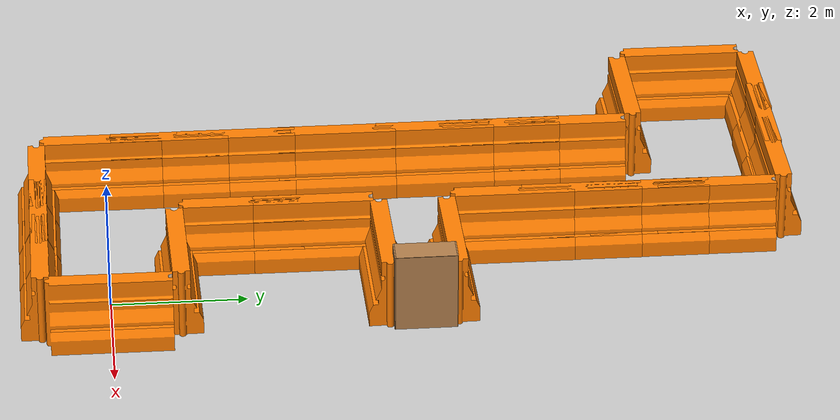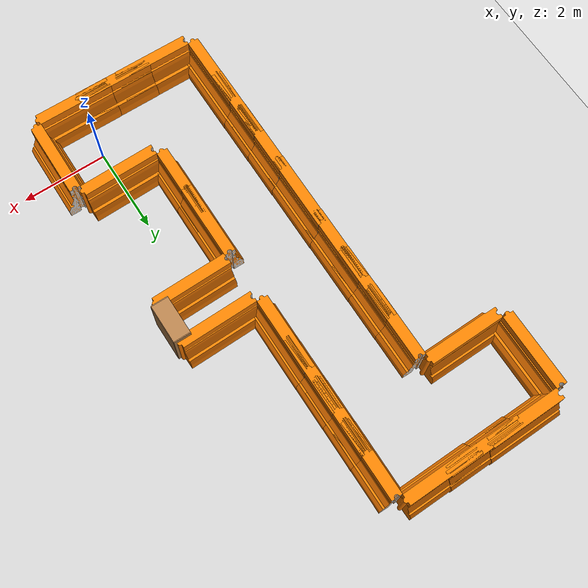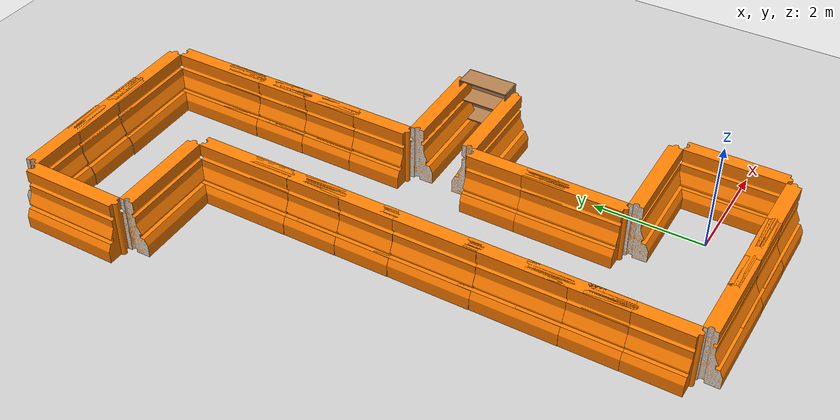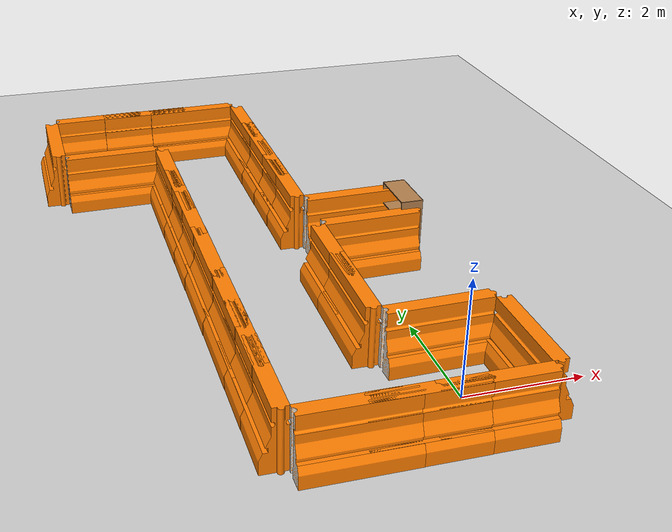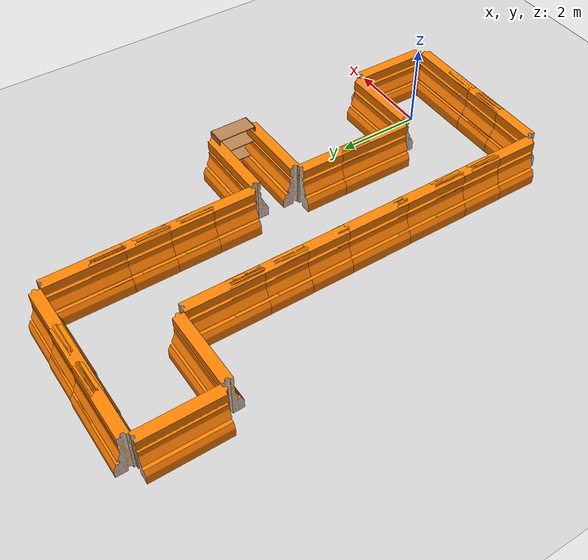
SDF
<sdf version="1.6">
 <world name="default">
  <light name="sun" type="directional">
   <pose>0 0 10 0 -0 0</pose>
   <diffuse>0.8 0.8 0.8 1</diffuse>
   <specular>0.2 0.2 0.2 1</specular>
   <attenuation>
    <range>1000</range>
    <constant>0.9</constant>
    <linear>0.01</linear>
    <quadratic>0.001</quadratic>
   </attenuation>
   <direction>-0.5 0.1 -0.9</direction>
  </light>
  <model name="ground_plane">
   <static>1</static>
   <link name="link">
    <collision name="collision">
     <geometry><plane><normal>0 0 1</normal><size>100 100</size></plane></geometry>
     <surface><friction><ode><mu>100</mu><mu2>50</mu2></ode></friction></surface>
    </collision>
    <visual name="visual">
     <cast_shadows>0</cast_shadows>
     <geometry><plane><normal>0 0 1</normal><size>100 100</size></plane></geometry>
     <material>
      <script><uri>file://media/materials/scripts/gazebo.material</uri><name>Gazebo/Grey</name></script>
     </material>
    </visual>
    <velocity_decay><linear>0</linear><angular>0</angular></velocity_decay>
   </link>
  </model>
  <physics name="default_physics" default="0" type="ode">
   <max_step_size>0.001</max_step_size>
   <real_time_factor>1</real_time_factor>
   <real_time_update_rate>1000</real_time_update_rate>
  </physics>
  <scene><ambient>0.4 0.4 0.4 1</ambient><background>0.7 0.7 0.7 1</background><shadows>1</shadows></scene>
  <spherical_coordinates>
   <surface_model>EARTH_WGS84</surface_model>
   <latitude_deg>0</latitude_deg>
   <longitude_deg>0</longitude_deg>
   <elevation>0</elevation>
   <heading_deg>0</heading_deg>
  </spherical_coordinates>
  <gravity>0 0 -9.8</gravity>
  <magnetic_field>6e-06 2.3e-05 -4.2e-05</magnetic_field>
  <atmosphere type="adiabatic"/>
  <model name="drc_practice_organge_jersey_barrier_2_clone_2">
   <static>1</static>
   <link name="link">
    <visual name="visual">
     <geometry>
      <mesh><uri>model://drc_practice_orange_jersey_barrier/meshes/jersey_barrier.dae</uri></mesh>
     </geometry>
    </visual>
    <collision name="collision">
     <geometry>
      <mesh><uri>model://drc_practice_orange_jersey_barrier/meshes/jersey_barrier.dae</uri></mesh>
     </geometry>
    </collision>
    <velocity_decay><linear>0</linear><angular>0</angular></velocity_decay>
   </link>
   <pose>1 0 0 0 -0 0</pose>
  </model>
  <model name="drc_practice_organge_jersey_barrier_clone">
   <static>1</static>
   <link name="link">
    <visual name="visual">
     <geometry>
      <mesh><uri>model://drc_practice_orange_jersey_barrier/meshes/jersey_barrier.dae</uri></mesh>
     </geometry>
    </visual>
    <collision name="collision">
     <geometry>
      <mesh><uri>model://drc_practice_orange_jersey_barrier/meshes/jersey_barrier.dae</uri></mesh>
     </geometry>
    </collision>
    <velocity_decay><linear>0</linear><angular>0</angular></velocity_decay>
   </link>
   <pose>0 1 0 0 -0 1.59364</pose>
  </model>
  <model name="drc_practice_organge_jersey_barrier_2_clone_4">
   <static>1</static>
   <link name="link">
    <visual name="visual">
     <geometry>
      <mesh><uri>model://drc_practice_orange_jersey_barrier/meshes/jersey_barrier.dae</uri></mesh>
     </geometry>
    </visual>
    <collision name="collision">
     <geometry>
      <mesh><uri>model://drc_practice_orange_jersey_barrier/meshes/jersey_barrier.dae</uri></mesh>
     </geometry>
    </collision>
    <velocity_decay><linear>0</linear><angular>0</angular></velocity_decay>
   </link>
   <pose>-1 2 0 0 -0 0</pose>
  </model>
  <model name="drc_practice_organge_jersey_barrier_2_clone_0_clone_clone_0">
   <static>1</static>
   <link name="link">
    <visual name="visual">
     <geometry>
      <mesh><uri>model://drc_practice_orange_jersey_barrier/meshes/jersey_barrier.dae</uri></mesh>
     </geometry>
    </visual>
    <collision name="collision">
     <geometry>
      <mesh><uri>model://drc_practice_orange_jersey_barrier/meshes/jersey_barrier.dae</uri></mesh>
     </geometry>
    </collision>
    <velocity_decay><linear>0</linear><angular>0</angular></velocity_decay>
   </link>
   <pose>-0.99404 3.02596 0 0 -0 0</pose>
  </model>
  <model name="drc_practice_organge_jersey_barrier_1_clone_clone_clone">
   <static>1</static>
   <link name="link">
    <visual name="visual">
     <geometry>
      <mesh><uri>model://drc_practice_orange_jersey_barrier/meshes/jersey_barrier.dae</uri></mesh>
     </geometry>
    </visual>
    <collision name="collision">
     <geometry>
      <mesh><uri>model://drc_practice_orange_jersey_barrier/meshes/jersey_barrier.dae</uri></mesh>
     </geometry>
    </collision>
    <velocity_decay><linear>0</linear><angular>0</angular></velocity_decay>
   </link>
   <pose>0 -1 0 0 -0 1.57109</pose>
  </model>
  <model name="drc_practice_organge_jersey_barrier_1_clone_0_clone">
   <static>1</static>
   <link name="link">
    <visual name="visual">
     <geometry>
      <mesh><uri>model://drc_practice_orange_jersey_barrier/meshes/jersey_barrier.dae</uri></mesh>
     </geometry>
    </visual>
    <collision name="collision">
     <geometry>
      <mesh><uri>model://drc_practice_orange_jersey_barrier/meshes/jersey_barrier.dae</uri></mesh>
     </geometry>
    </collision>
    <velocity_decay><linear>0</linear><angular>0</angular></velocity_decay>
   </link>
   <pose>-1 -1 0 0 -0 1.57109</pose>
  </model>
  <model name="drc_practice_organge_jersey_barrier_2_clone_7_clone">
   <static>1</static>
   <link name="link">
    <visual name="visual">
     <geometry>
      <mesh><uri>model://drc_practice_orange_jersey_barrier/meshes/jersey_barrier.dae</uri></mesh>
     </geometry>
    </visual>
    <collision name="collision">
     <geometry>
      <mesh><uri>model://drc_practice_orange_jersey_barrier/meshes/jersey_barrier.dae</uri></mesh>
     </geometry>
    </collision>
    <velocity_decay><linear>0</linear><angular>0</angular></velocity_decay>
   </link>
   <pose>-1 6 0 0 -0 0</pose>
  </model>
  <model name="drc_practice_organge_jersey_barrier_2_clone_7_clone_0">
   <static>1</static>
   <link name="link">
    <visual name="visual">
     <geometry>
      <mesh><uri>model://drc_practice_orange_jersey_barrier/meshes/jersey_barrier.dae</uri></mesh>
     </geometry>
    </visual>
    <collision name="collision">
     <geometry>
      <mesh><uri>model://drc_practice_orange_jersey_barrier/meshes/jersey_barrier.dae</uri></mesh>
     </geometry>
    </collision>
    <velocity_decay><linear>0</linear><angular>0</angular></velocity_decay>
   </link>
   <pose>-1 7 0 0 -0 0</pose>
  </model>
  <model name="drc_practice_organge_jersey_barrier_clone_2_clone_clone_1">
   <static>1</static>
   <link name="link">
    <visual name="visual">
     <geometry>
      <mesh><uri>model://drc_practice_orange_jersey_barrier/meshes/jersey_barrier.dae</uri></mesh>
     </geometry>
    </visual>
    <collision name="collision">
     <geometry>
      <mesh><uri>model://drc_practice_orange_jersey_barrier/meshes/jersey_barrier.dae</uri></mesh>
     </geometry>
    </collision>
    <velocity_decay><linear>0</linear><angular>0</angular></velocity_decay>
   </link>
   <pose>0 4 0 0 -0 1.59364</pose>
  </model>
  <model name="drc_practice_organge_jersey_barrier_clone_2_clone_clone_2">
   <static>1</static>
   <link name="link">
    <visual name="visual">
     <geometry>
      <mesh><uri>model://drc_practice_orange_jersey_barrier/meshes/jersey_barrier.dae</uri></mesh>
     </geometry>
    </visual>
    <collision name="collision">
     <geometry>
      <mesh><uri>model://drc_practice_orange_jersey_barrier/meshes/jersey_barrier.dae</uri></mesh>
     </geometry>
    </collision>
    <velocity_decay><linear>0</linear><angular>0</angular></velocity_decay>
   </link>
   <pose>0 5 0 0 -0 1.59364</pose>
  </model>
  <model name="bookshelf_clone_clone">
   <static>1</static>
   <link name="link">
    <inertial><mass>1</mass></inertial>
    <collision name="back">
     <pose>0 0.005 0.6 0 -0 0</pose>
     <geometry><box><size>0.9 0.01 1.2</size></box></geometry>
    </collision>
    <visual name="visual1">
     <pose>0 0.005 0.6 0 -0 0</pose>
     <geometry><box><size>0.9 0.01 1.2</size></box></geometry>
     <material>
      <script><uri>file://media/materials/scripts/gazebo.material</uri><name>Gazebo/Wood</name></script>
     </material>
    </visual>
    <collision name="left_side">
     <pose>0.45 -0.195 0.6 0 -0 0</pose>
     <geometry><box><size>0.02 0.4 1.2</size></box></geometry>
    </collision>
    <visual name="visual2">
     <pose>0.45 -0.195 0.6 0 -0 0</pose>
     <geometry><box><size>0.02 0.4 1.2</size></box></geometry>
     <material>
      <script><uri>file://media/materials/scripts/gazebo.material</uri><name>Gazebo/Wood</name></script>
     </material>
    </visual>
    <collision name="right_side">
     <pose>-0.45 -0.195 0.6 0 -0 0</pose>
     <geometry><box><size>0.02 0.4 1.2</size></box></geometry>
    </collision>
    <visual name="visual3">
     <pose>-0.45 -0.195 0.6 0 -0 0</pose>
     <geometry><box><size>0.02 0.4 1.2</size></box></geometry>
     <material>
      <script><uri>file://media/materials/scripts/gazebo.material</uri><name>Gazebo/Wood</name></script>
     </material>
    </visual>
    <collision name="bottom">
     <pose>0 -0.195 0.03 0 -0 0</pose>
     <geometry><box><size>0.88 0.4 0.06</size></box></geometry>
    </collision>
    <visual name="visual4">
     <pose>0 -0.195 0.03 0 -0 0</pose>
     <geometry><box><size>0.88 0.4 0.06</size></box></geometry>
     <material>
      <script><uri>file://media/materials/scripts/gazebo.material</uri><name>Gazebo/Wood</name></script>
     </material>
    </visual>
    <collision name="top">
     <pose>0 -0.195 1.19 0 -0 0</pose>
     <geometry><box><size>0.88 0.4 0.02</size></box></geometry>
    </collision>
    <visual name="visual5">
     <pose>0 -0.195 1.19 0 -0 0</pose>
     <geometry><box><size>0.88 0.4 0.02</size></box></geometry>
     <material>
      <script><uri>file://media/materials/scripts/gazebo.material</uri><name>Gazebo/Wood</name></script>
     </material>
    </visual>
    <collision name="low_shelf">
     <pose>0 -0.195 0.43 0 -0 0</pose>
     <geometry><box><size>0.88 0.4 0.02</size></box></geometry>
    </collision>
    <visual name="visual6">
     <pose>0 -0.195 0.43 0 -0 0</pose>
     <geometry><box><size>0.88 0.4 0.02</size></box></geometry>
     <material>
      <script><uri>file://media/materials/scripts/gazebo.material</uri><name>Gazebo/Wood</name></script>
     </material>
    </visual>
    <collision name="high_shelf">
     <pose>0 -0.195 0.8 0 -0 0</pose>
     <geometry><box><size>0.88 0.4 0.02</size></box></geometry>
    </collision>
    <visual name="visual7">
     <pose>0 -0.195 0.8 0 -0 0</pose>
     <geometry><box><size>0.88 0.4 0.02</size></box></geometry>
     <material>
      <script><uri>file://media/materials/scripts/gazebo.material</uri><name>Gazebo/Wood</name></script>
     </material>
    </visual>
   </link>
   <pose>1 4.53149 0 0 0 -1.5708</pose>
  </model>
  <model name="drc_practice_organge_jersey_barrier_clone_1_clone">
   <static>1</static>
   <link name="link">
    <visual name="visual">
     <geometry>
      <mesh><uri>model://drc_practice_orange_jersey_barrier/meshes/jersey_barrier.dae</uri></mesh>
     </geometry>
    </visual>
    <collision name="collision">
     <geometry>
      <mesh><uri>model://drc_practice_orange_jersey_barrier/meshes/jersey_barrier.dae</uri></mesh>
     </geometry>
    </collision>
    <velocity_decay><linear>0</linear><angular>0</angular></velocity_decay>
   </link>
   <pose>-3 10 0 0 -0 1.59364</pose>
  </model>
  <model name="drc_practice_organge_jersey_barrier_2_clone_0_clone_clone">
   <static>1</static>
   <link name="link">
    <visual name="visual">
     <geometry>
      <mesh><uri>model://drc_practice_orange_jersey_barrier/meshes/jersey_barrier.dae</uri></mesh>
     </geometry>
    </visual>
    <collision name="collision">
     <geometry>
      <mesh><uri>model://drc_practice_orange_jersey_barrier/meshes/jersey_barrier.dae</uri></mesh>
     </geometry>
    </collision>
    <velocity_decay><linear>0</linear><angular>0</angular></velocity_decay>
   </link>
   <pose>-1 9 0 0 -0 0</pose>
  </model>
  <model name="drc_practice_organge_jersey_barrier_2_clone_0_clone_clone_1">
   <static>1</static>
   <link name="link">
    <visual name="visual">
     <geometry>
      <mesh><uri>model://drc_practice_orange_jersey_barrier/meshes/jersey_barrier.dae</uri></mesh>
     </geometry>
    </visual>
    <collision name="collision">
     <geometry>
      <mesh><uri>model://drc_practice_orange_jersey_barrier/meshes/jersey_barrier.dae</uri></mesh>
     </geometry>
    </collision>
    <velocity_decay><linear>0</linear><angular>0</angular></velocity_decay>
   </link>
   <pose>-1 8 0 0 -0 0</pose>
  </model>
  <model name="drc_practice_organge_jersey_barrier_clone_2_clone_0_clone_0">
   <static>1</static>
   <link name="link">
    <visual name="visual">
     <geometry>
      <mesh><uri>model://drc_practice_orange_jersey_barrier/meshes/jersey_barrier.dae</uri></mesh>
     </geometry>
    </visual>
    <collision name="collision">
     <geometry>
      <mesh><uri>model://drc_practice_orange_jersey_barrier/meshes/jersey_barrier.dae</uri></mesh>
     </geometry>
    </collision>
    <velocity_decay><linear>0</linear><angular>0</angular></velocity_decay>
   </link>
   <pose>-2 10 0 0 -0 1.59364</pose>
  </model>
  <model name="drc_practice_organge_jersey_barrier_2_clone_8_clone_clone_clone">
   <static>1</static>
   <link name="link">
    <visual name="visual">
     <geometry>
      <mesh><uri>model://drc_practice_orange_jersey_barrier/meshes/jersey_barrier.dae</uri></mesh>
     </geometry>
    </visual>
    <collision name="collision">
     <geometry>
      <mesh><uri>model://drc_practice_orange_jersey_barrier/meshes/jersey_barrier.dae</uri></mesh>
     </geometry>
    </collision>
    <velocity_decay><linear>0</linear><angular>0</angular></velocity_decay>
   </link>
   <pose>-5 9 0 0 -0 0</pose>
  </model>
  <model name="drc_practice_organge_jersey_barrier_clone_2_clone_0_clone_clone">
   <static>1</static>
   <link name="link">
    <visual name="visual">
     <geometry>
      <mesh><uri>model://drc_practice_orange_jersey_barrier/meshes/jersey_barrier.dae</uri></mesh>
     </geometry>
    </visual>
    <collision name="collision">
     <geometry>
      <mesh><uri>model://drc_practice_orange_jersey_barrier/meshes/jersey_barrier.dae</uri></mesh>
     </geometry>
    </collision>
    <velocity_decay><linear>0</linear><angular>0</angular></velocity_decay>
   </link>
   <pose>-4 8 0 0 -0 1.59364</pose>
  </model>
  <model name="drc_practice_organge_jersey_barrier_clone_1_clone_clone">
   <static>1</static>
   <link name="link">
    <visual name="visual">
     <geometry>
      <mesh><uri>model://drc_practice_orange_jersey_barrier/meshes/jersey_barrier.dae</uri></mesh>
     </geometry>
    </visual>
    <collision name="collision">
     <geometry>
      <mesh><uri>model://drc_practice_orange_jersey_barrier/meshes/jersey_barrier.dae</uri></mesh>
     </geometry>
    </collision>
    <velocity_decay><linear>0</linear><angular>0</angular></velocity_decay>
   </link>
   <pose>-4 10 0 0 -0 1.59364</pose>
  </model>
  <model name="drc_practice_organge_jersey_barrier_2_clone_clone_clone">
   <static>1</static>
   <link name="link">
    <visual name="visual">
     <geometry>
      <mesh><uri>model://drc_practice_orange_jersey_barrier/meshes/jersey_barrier.dae</uri></mesh>
     </geometry>
    </visual>
    <collision name="collision">
     <geometry>
      <mesh><uri>model://drc_practice_orange_jersey_barrier/meshes/jersey_barrier.dae</uri></mesh>
     </geometry>
    </collision>
    <velocity_decay><linear>0</linear><angular>0</angular></velocity_decay>
   </link>
   <pose>-3 0 0 0 -0 0</pose>
  </model>
  <model name="drc_practice_organge_jersey_barrier_2_clone_clone_clone_0">
   <static>1</static>
   <link name="link">
    <visual name="visual">
     <geometry>
      <mesh><uri>model://drc_practice_orange_jersey_barrier/meshes/jersey_barrier.dae</uri></mesh>
     </geometry>
    </visual>
    <collision name="collision">
     <geometry>
      <mesh><uri>model://drc_practice_orange_jersey_barrier/meshes/jersey_barrier.dae</uri></mesh>
     </geometry>
    </collision>
    <velocity_decay><linear>0</linear><angular>0</angular></velocity_decay>
   </link>
   <pose>-3 1 0 0 -0 0</pose>
  </model>
  <model name="drc_practice_organge_jersey_barrier_2_clone_clone_clone_1">
   <static>1</static>
   <link name="link">
    <visual name="visual">
     <geometry>
      <mesh><uri>model://drc_practice_orange_jersey_barrier/meshes/jersey_barrier.dae</uri></mesh>
     </geometry>
    </visual>
    <collision name="collision">
     <geometry>
      <mesh><uri>model://drc_practice_orange_jersey_barrier/meshes/jersey_barrier.dae</uri></mesh>
     </geometry>
    </collision>
    <velocity_decay><linear>0</linear><angular>0</angular></velocity_decay>
   </link>
   <pose>-3 2 0 0 -0 0</pose>
  </model>
  <model name="drc_practice_organge_jersey_barrier_2_clone_clone_clone_2">
   <static>1</static>
   <link name="link">
    <visual name="visual">
     <geometry>
      <mesh><uri>model://drc_practice_orange_jersey_barrier/meshes/jersey_barrier.dae</uri></mesh>
     </geometry>
    </visual>
    <collision name="collision">
     <geometry>
      <mesh><uri>model://drc_practice_orange_jersey_barrier/meshes/jersey_barrier.dae</uri></mesh>
     </geometry>
    </collision>
    <velocity_decay><linear>0</linear><angular>0</angular></velocity_decay>
   </link>
   <pose>-3 3.51716 0 0 -0 0</pose>
  </model>
  <model name="drc_practice_organge_jersey_barrier_2_clone_clone_clone_3">
   <static>1</static>
   <link name="link">
    <visual name="visual">
     <geometry>
      <mesh><uri>model://drc_practice_orange_jersey_barrier/meshes/jersey_barrier.dae</uri></mesh>
     </geometry>
    </visual>
    <collision name="collision">
     <geometry>
      <mesh><uri>model://drc_practice_orange_jersey_barrier/meshes/jersey_barrier.dae</uri></mesh>
     </geometry>
    </collision>
    <velocity_decay><linear>0</linear><angular>0</angular></velocity_decay>
   </link>
   <pose>-3 5 0 0 -0 0</pose>
  </model>
  <model name="drc_practice_organge_jersey_barrier_2_clone_clone_clone_4">
   <static>1</static>
   <link name="link">
    <visual name="visual">
     <geometry>
      <mesh><uri>model://drc_practice_orange_jersey_barrier/meshes/jersey_barrier.dae</uri></mesh>
     </geometry>
    </visual>
    <collision name="collision">
     <geometry>
      <mesh><uri>model://drc_practice_orange_jersey_barrier/meshes/jersey_barrier.dae</uri></mesh>
     </geometry>
    </collision>
    <velocity_decay><linear>0</linear><angular>0</angular></velocity_decay>
   </link>
   <pose>-3 6 0 0 -0 0</pose>
  </model>
  <model name="drc_practice_organge_jersey_barrier_2_clone_clone_clone_4_clone">
   <static>1</static>
   <link name="link">
    <visual name="visual">
     <geometry>
      <mesh><uri>model://drc_practice_orange_jersey_barrier/meshes/jersey_barrier.dae</uri></mesh>
     </geometry>
    </visual>
    <collision name="collision">
     <geometry>
      <mesh><uri>model://drc_practice_orange_jersey_barrier/meshes/jersey_barrier.dae</uri></mesh>
     </geometry>
    </collision>
    <velocity_decay><linear>0</linear><angular>0</angular></velocity_decay>
   </link>
   <pose>-3 7 0 0 -0 0</pose>
  </model>
  <model name="drc_practice_organge_jersey_barrier_1_clone_0_clone_clone">
   <static>1</static>
   <link name="link">
    <visual name="visual">
     <geometry>
      <mesh><uri>model://drc_practice_orange_jersey_barrier/meshes/jersey_barrier.dae</uri></mesh>
     </geometry>
    </visual>
    <collision name="collision">
     <geometry>
      <mesh><uri>model://drc_practice_orange_jersey_barrier/meshes/jersey_barrier.dae</uri></mesh>
     </geometry>
    </collision>
    <velocity_decay><linear>0</linear><angular>0</angular></velocity_decay>
   </link>
   <pose>-2 -1 0 0 -0 1.57109</pose>
  </model>
 </world>
</sdf>
